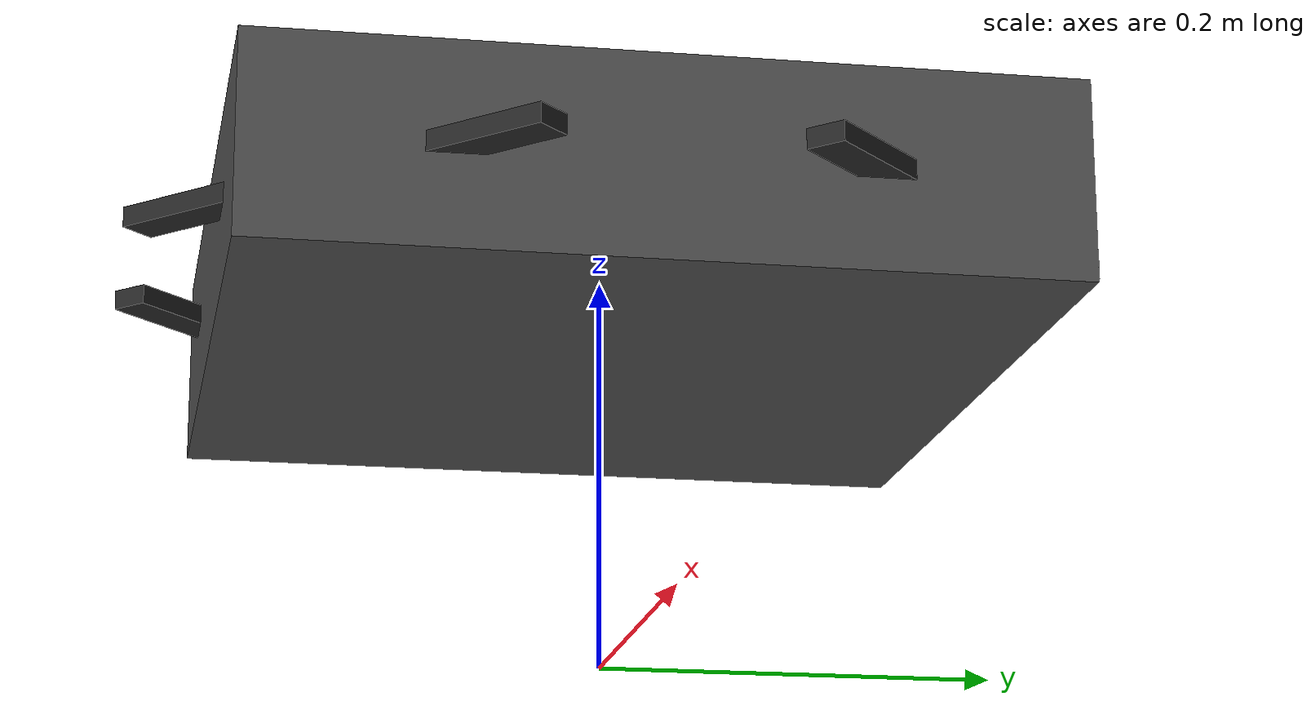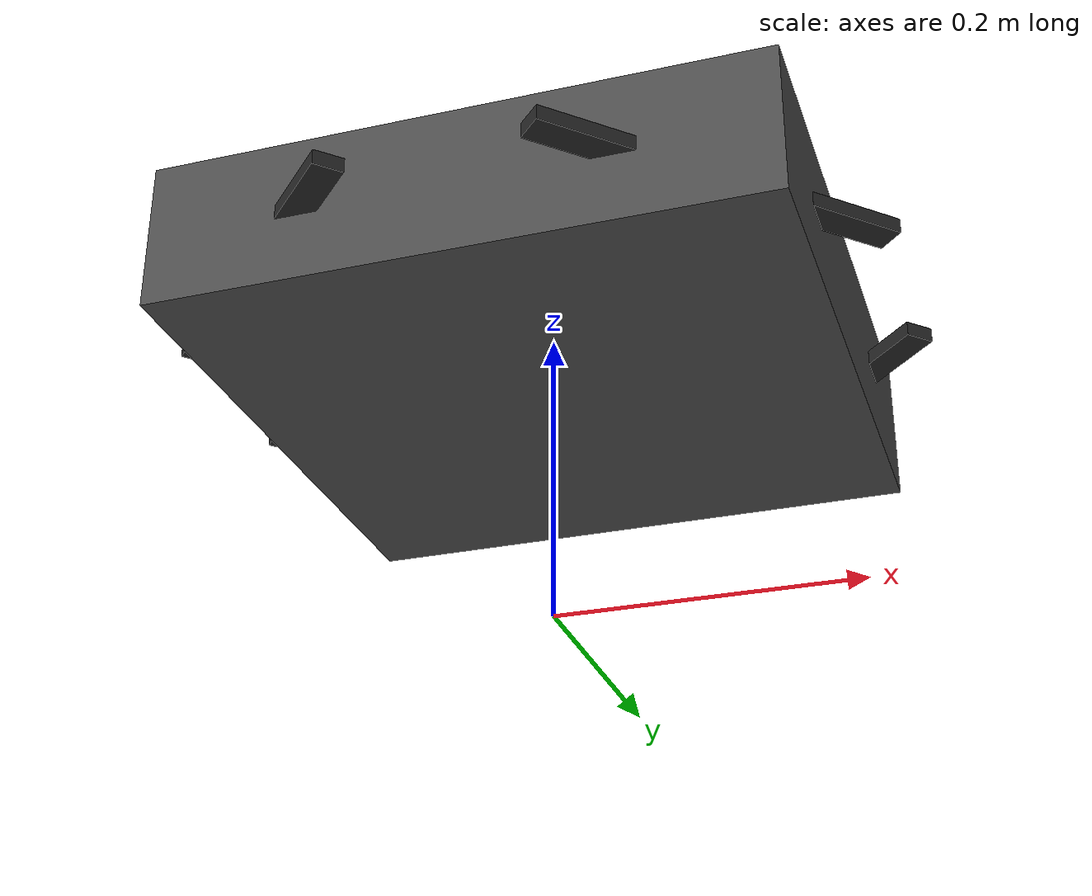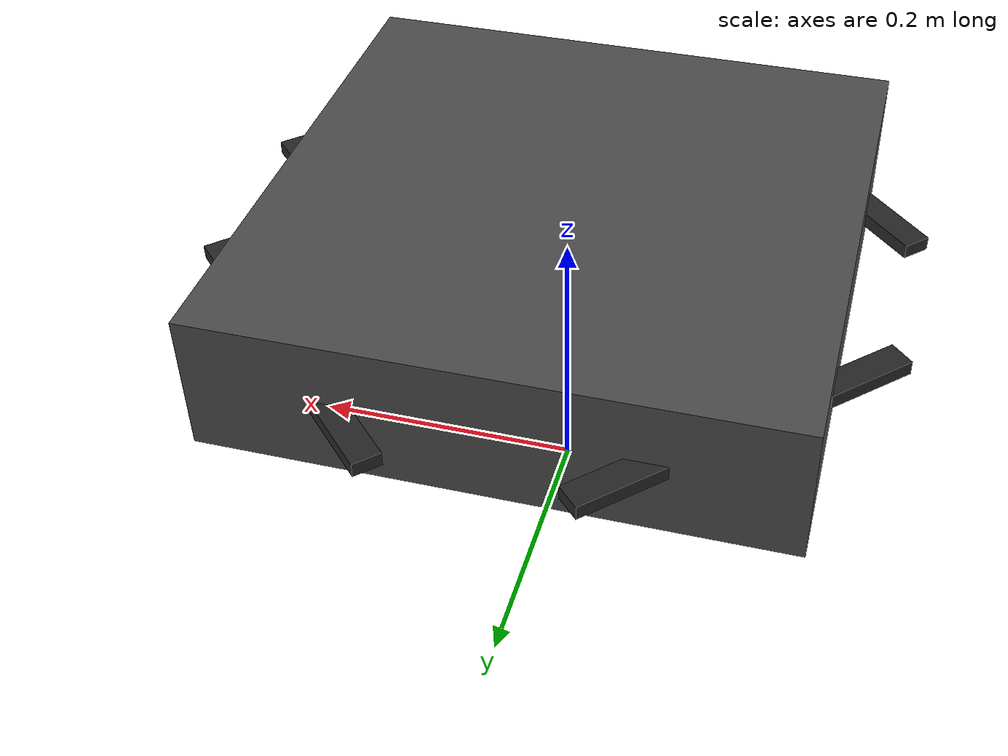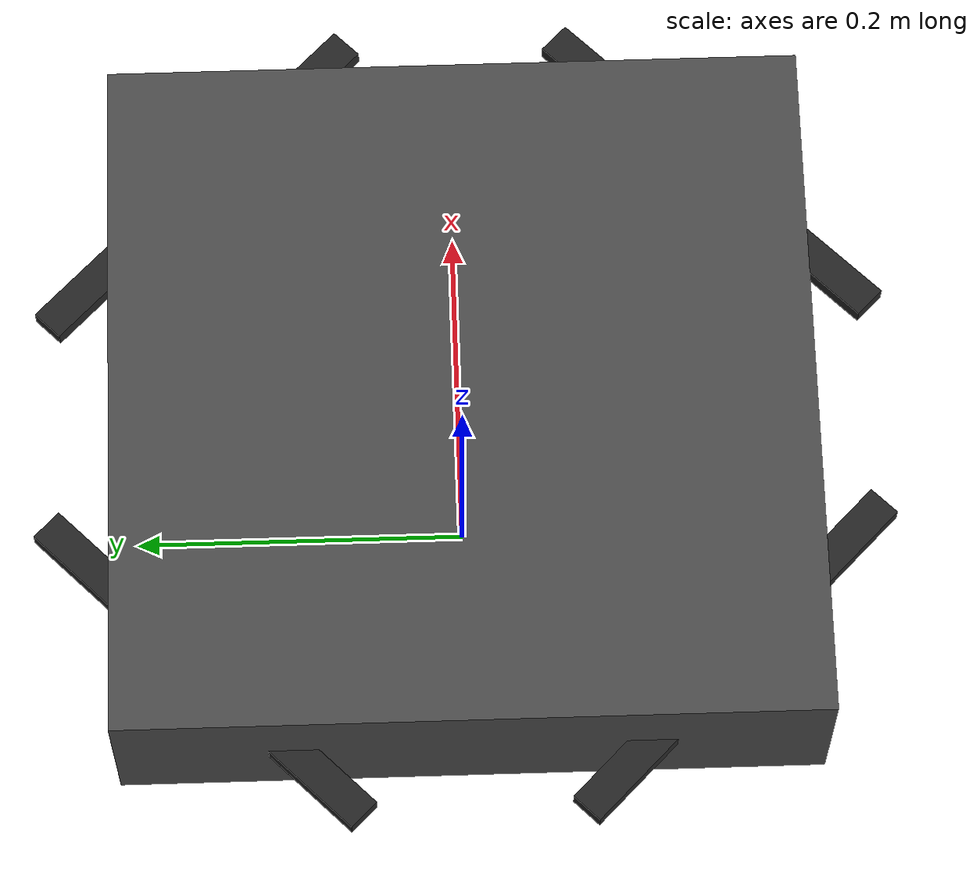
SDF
<?xml version="1.0" ?>
<sdf version="1.9">
  <model name="vns_drone">
    <pose>0 0 0.2 0 0 0</pose>

    <!-- Main body frame -->
    <link name="base_link">
      <inertial>
        <mass>1.5</mass>
        <inertia>
          <ixx>0.029125</ixx>
          <ixy>0</ixy>
          <ixz>0</ixz>
          <iyy>0.029125</iyy>
          <iyz>0</iyz>
          <izz>0.055225</izz>
        </inertia>
      </inertial>

      <collision name="body_collision">
        <geometry>
          <box><size>0.4 0.4 0.1</size></box>
        </geometry>
      </collision>

      <visual name="body_visual">
        <geometry>
          <box><size>0.4 0.4 0.1</size></box>
        </geometry>
        <material>
          <ambient>0.2 0.2 0.2 1</ambient>
          <diffuse>0.3 0.3 0.3 1</diffuse>
        </material>
      </visual>

      <!-- Downward-facing camera for visual navigation -->
      <sensor name="vns_camera" type="camera">
        <pose>0 0 -0.05 0 1.5708 0</pose>
        <always_on>true</always_on>
        <update_rate>30</update_rate>
        <camera name="downward_camera">
          <horizontal_fov>1.047</horizontal_fov>
          <image>
            <width>640</width>
            <height>480</height>
            <format>R8G8B8</format>
          </image>
          <clip>
            <near>0.1</near>
            <far>500</far>
          </clip>
          <noise>
            <type>gaussian</type>
            <mean>0.0</mean>
            <stddev>0.007</stddev>
          </noise>
        </camera>
      </sensor>

      <!-- IMU sensor -->
      <sensor name="imu_sensor" type="imu">
        <always_on>true</always_on>
        <update_rate>250</update_rate>
        <imu>
          <angular_velocity>
            <x>
              <noise type="gaussian">
                <mean>0</mean>
                <stddev>0.0003</stddev>
              </noise>
            </x>
            <y>
              <noise type="gaussian">
                <mean>0</mean>
                <stddev>0.0003</stddev>
              </noise>
            </y>
            <z>
              <noise type="gaussian">
                <mean>0</mean>
                <stddev>0.0003</stddev>
              </noise>
            </z>
          </angular_velocity>
          <linear_acceleration>
            <x>
              <noise type="gaussian">
                <mean>0</mean>
                <stddev>0.01</stddev>
              </noise>
            </x>
            <y>
              <noise type="gaussian">
                <mean>0</mean>
                <stddev>0.01</stddev>
              </noise>
            </y>
            <z>
              <noise type="gaussian">
                <mean>0</mean>
                <stddev>0.01</stddev>
              </noise>
            </z>
          </linear_acceleration>
        </imu>
      </sensor>

      <!-- GPS sensor (configurable - can be disabled for GNSS-denied testing) -->
      <sensor name="gps_sensor" type="gps">
        <always_on>true</always_on>
        <update_rate>5</update_rate>
        <gps>
          <position_sensing>
            <horizontal>
              <noise type="gaussian">
                <mean>0</mean>
                <stddev>0.5</stddev>
              </noise>
            </horizontal>
            <vertical>
              <noise type="gaussian">
                <mean>0</mean>
                <stddev>1.0</stddev>
              </noise>
            </vertical>
          </position_sensing>
          <velocity_sensing>
            <horizontal>
              <noise type="gaussian">
                <mean>0</mean>
                <stddev>0.1</stddev>
              </noise>
            </horizontal>
            <vertical>
              <noise type="gaussian">
                <mean>0</mean>
                <stddev>0.1</stddev>
              </noise>
            </vertical>
          </velocity_sensing>
        </gps>
      </sensor>
    </link>

    <!-- Rotor arms for visual reference -->
    <link name="rotor_arm_front_right">
      <pose>0.15 -0.15 0 0 0 0.785</pose>
      <visual name="visual">
        <geometry>
          <box><size>0.25 0.02 0.01</size></box>
        </geometry>
        <material>
          <ambient>0.1 0.1 0.1 1</ambient>
          <diffuse>0.15 0.15 0.15 1</diffuse>
        </material>
      </visual>
    </link>

    <link name="rotor_arm_front_left">
      <pose>0.15 0.15 0 0 0 -0.785</pose>
      <visual name="visual">
        <geometry>
          <box><size>0.25 0.02 0.01</size></box>
        </geometry>
        <material>
          <ambient>0.1 0.1 0.1 1</ambient>
          <diffuse>0.15 0.15 0.15 1</diffuse>
        </material>
      </visual>
    </link>

    <link name="rotor_arm_back_right">
      <pose>-0.15 -0.15 0 0 0 -0.785</pose>
      <visual name="visual">
        <geometry>
          <box><size>0.25 0.02 0.01</size></box>
        </geometry>
        <material>
          <ambient>0.1 0.1 0.1 1</ambient>
          <diffuse>0.15 0.15 0.15 1</diffuse>
        </material>
      </visual>
    </link>

    <link name="rotor_arm_back_left">
      <pose>-0.15 0.15 0 0 0 0.785</pose>
      <visual name="visual">
        <geometry>
          <box><size>0.25 0.02 0.01</size></box>
        </geometry>
        <material>
          <ambient>0.1 0.1 0.1 1</ambient>
          <diffuse>0.15 0.15 0.15 1</diffuse>
        </material>
      </visual>
    </link>

    <!-- Fixed joints for rotor arms -->
    <joint name="arm_fr_joint" type="fixed">
      <parent>base_link</parent>
      <child>rotor_arm_front_right</child>
    </joint>

    <joint name="arm_fl_joint" type="fixed">
      <parent>base_link</parent>
      <child>rotor_arm_front_left</child>
    </joint>

    <joint name="arm_br_joint" type="fixed">
      <parent>base_link</parent>
      <child>rotor_arm_back_right</child>
    </joint>

    <joint name="arm_bl_joint" type="fixed">
      <parent>base_link</parent>
      <child>rotor_arm_back_left</child>
    </joint>

  </model>
</sdf>
